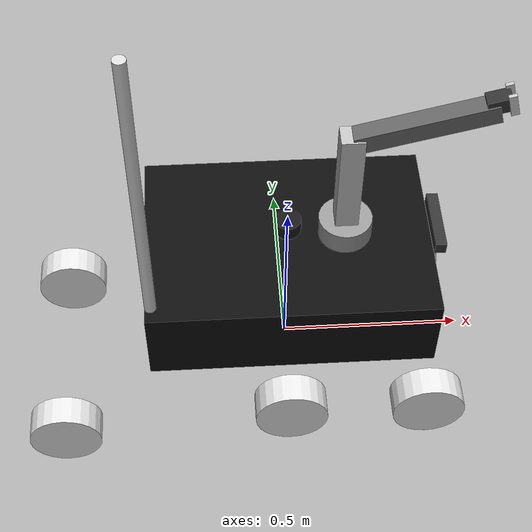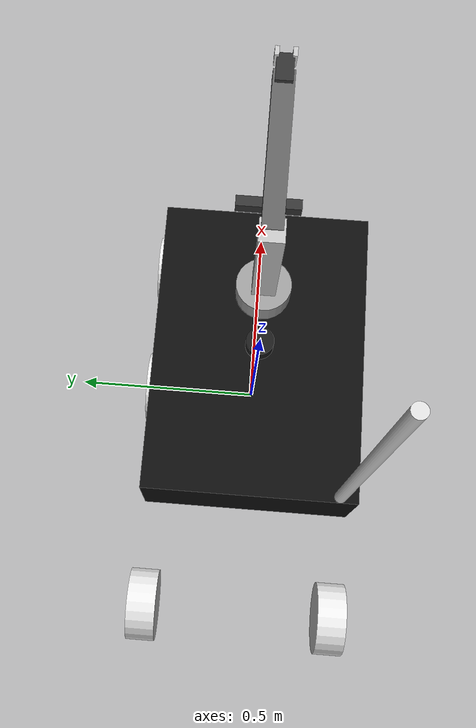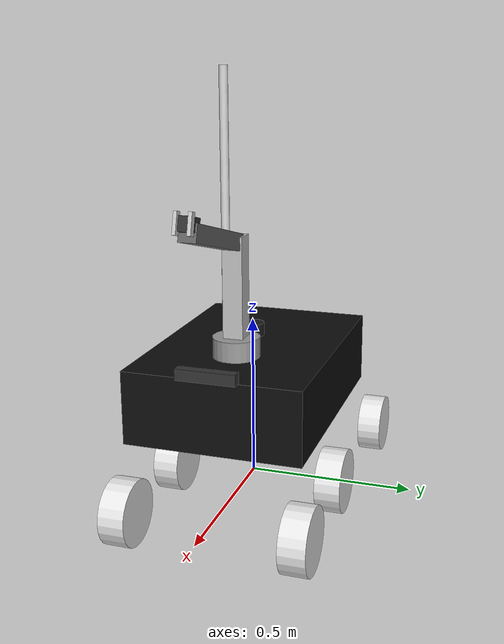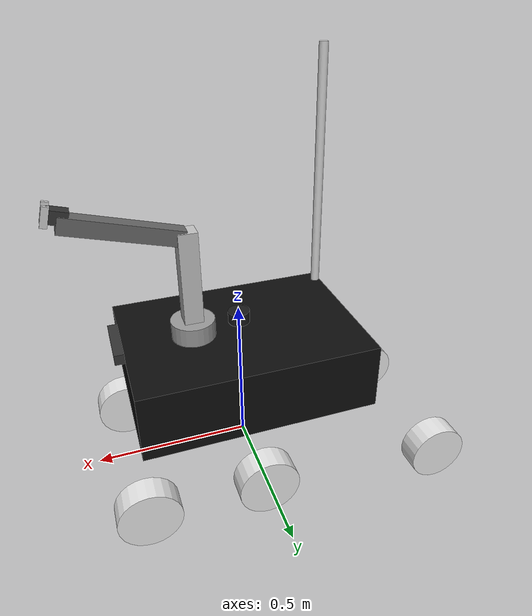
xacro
<?xml version="1.0"?>
<robot name="qbotix_rover" xmlns:xacro="http://ros.org/wiki/xacro">

  <!-- ================= PROPERTIES ================= -->
  <xacro:property name="wheel_radius" value="0.10"/>
  <xacro:property name="wheel_width" value="0.08"/>
  <xacro:property name="base_length" value="0.75"/>
  <xacro:property name="base_width" value="0.53"/>
  <xacro:property name="base_height" value="0.22"/>

  <!-- ================= MATERIALS ================= -->
  <material name="black">
    <color rgba="0.05 0.05 0.05 1.0"/>
  </material>
  <material name="wheel_material">
    <color rgba="0.9 0.9 0.9 1.0"/>
  </material>
  <material name="zed_material">
    <color rgba="0.2 0.2 0.2 1.0"/>
  </material>
  <material name="arm_material">
    <color rgba="0.6 0.6 0.6 1.0"/>
  </material>
  <material name="arm_link_material">
    <color rgba="0.75 0.75 0.75 1.0"/>
  </material>
  <material name="arm_link_dark">
    <color rgba="0.4 0.4 0.4 1.0"/>
  </material>
  <material name="gripper_material">
    <color rgba="0.2 0.2 0.2 1.0"/>
  </material>
  <material name="finger_material">
    <color rgba="0.8 0.8 0.8 1.0"/>
  </material>
  <material name="antenna_material">
    <color rgba="0.85 0.85 0.85 1.0"/>
  </material>
  <material name="lidar_material">
    <color rgba="0.1 0.1 0.1 1.0"/>
  </material>

  <!-- ================= BASE ================= -->
  <link name="base_footprint"/>

  <joint name="base_footprint_joint" type="fixed">
    <parent link="base_footprint"/>
    <child link="base_link"/>
    <origin xyz="0 0 0.32" rpy="0 0 0"/>
  </joint>

  <link name="base_link">
    <visual>
      <geometry>
        <box size="${base_length} ${base_width} ${base_height}"/>
      </geometry>
      <material name="black"/>
    </visual>
    <collision>
      <geometry>
        <box size="${base_length} ${base_width} ${base_height}"/>
      </geometry>
    </collision>
    <inertial>
      <mass value="25.0"/>
      <origin xyz="0 0 0" rpy="0 0 0"/>
      <inertia ixx="0.5" ixy="0" ixz="0" iyy="1.0" iyz="0" izz="1.2"/>
    </inertial>
  </link>

  <!-- ================= RPLIDAR A1 M8 ================= -->
  <!-- LiDAR mounted on top of the robot base -->
  <link name="laser_frame">
    <visual>
      <geometry>
        <cylinder radius="0.035" length="0.04"/>
      </geometry>
      <origin xyz="0 0 0" rpy="0 0 0"/>
      <material name="lidar_material"/>
    </visual>
    <collision>
      <geometry>
        <cylinder radius="0.035" length="0.04"/>
      </geometry>
      <origin xyz="0 0 0" rpy="0 0 0"/>
    </collision>
    <inertial>
      <mass value="0.19"/>
      <origin xyz="0 0 0" rpy="0 0 0"/>
      <inertia ixx="0.0001" ixy="0" ixz="0" iyy="0.0001" iyz="0" izz="0.0001"/>
    </inertial>
  </link>

  <joint name="laser_joint" type="fixed">
    <parent link="base_link"/>
    <child link="laser_frame"/>
    <!-- LiDAR mounted on top center of the robot -->
    <!-- Z = base_height/2 + lidar_height/2 + mount_offset = 0.11 + 0.02 + 0.02 = 0.15 -->
    <origin xyz="0.0 0.0 0.15" rpy="0 0 0"/>
  </joint>

  <!-- ================= ROCKER LINKS ================= -->
  <link name="rocker_left">
    <inertial>
      <mass value="0.1"/>
      <inertia ixx="0.001" ixy="0" ixz="0" iyy="0.001" iyz="0" izz="0.001"/>
    </inertial>
  </link>
  <link name="rocker_right">
    <inertial>
      <mass value="0.1"/>
      <inertia ixx="0.001" ixy="0" ixz="0" iyy="0.001" iyz="0" izz="0.001"/>
    </inertial>
  </link>

  <joint name="rocker_left_joint" type="fixed">
    <parent link="base_link"/>
    <child link="rocker_left"/>
    <origin xyz="0 0.265 -0.12"/>
  </joint>

  <joint name="rocker_right_joint" type="fixed">
    <parent link="base_link"/>
    <child link="rocker_right"/>
    <origin xyz="0 -0.265 -0.12"/>
  </joint>

  <!-- ================= BOGIE LINKS ================= -->
  <link name="bogie_left">
    <inertial>
      <mass value="0.1"/>
      <inertia ixx="0.001" ixy="0" ixz="0" iyy="0.001" iyz="0" izz="0.001"/>
    </inertial>
  </link>
  <link name="bogie_right">
    <inertial>
      <mass value="0.1"/>
      <inertia ixx="0.001" ixy="0" ixz="0" iyy="0.001" iyz="0" izz="0.001"/>
    </inertial>
  </link>

  <joint name="bogie_left_joint" type="fixed">
    <parent link="rocker_left"/>
    <child link="bogie_left"/>
    <origin xyz="-0.28 0 -0.06"/>
  </joint>

  <joint name="bogie_right_joint" type="fixed">
    <parent link="rocker_right"/>
    <child link="bogie_right"/>
    <origin xyz="-0.28 0 -0.06"/>
  </joint>

  <!-- ================= WHEEL MACRO ================= -->
  <xacro:macro name="wheel" params="name parent x">
    <link name="${name}">
      <visual>
        <geometry>
          <cylinder radius="${wheel_radius}" length="${wheel_width}"/>
        </geometry>
        <material name="wheel_material"/>
      </visual>
      <collision>
        <geometry>
          <cylinder radius="${wheel_radius}" length="${wheel_width}"/>
        </geometry>
      </collision>
      <inertial>
        <mass value="2.0"/>
        <inertia ixx="0.01" ixy="0" ixz="0" iyy="0.01" iyz="0" izz="0.02"/>
      </inertial>
    </link>

    <joint name="${name}_joint" type="fixed">
      <parent link="${parent}"/>
      <child link="${name}"/>
      <origin xyz="${x} 0 -0.20" rpy="1.5708 0 0"/>
      <axis xyz="0 0 1"/>
    </joint>
  </xacro:macro>

  <!-- ================= WHEELS ================= -->
  <xacro:wheel name="front_left_wheel"  parent="rocker_left"  x="0.38"/>
  <xacro:wheel name="mid_left_wheel"    parent="rocker_left"  x="0.00"/>
  <xacro:wheel name="rear_left_wheel"   parent="bogie_left"   x="-0.35"/>

  <xacro:wheel name="front_right_wheel" parent="rocker_right" x="0.38"/>
  <xacro:wheel name="mid_right_wheel"   parent="rocker_right" x="0.00"/>
  <xacro:wheel name="rear_right_wheel"  parent="bogie_right"  x="-0.35"/>

  <!-- ================= ZED 2i CAMERA ================= -->
  <link name="zed_camera_link">
    <visual>
      <geometry>
        <box size="0.03 0.175 0.033"/>
      </geometry>
      <material name="zed_material"/>
    </visual>
    <collision>
      <geometry>
        <box size="0.03 0.175 0.033"/>
      </geometry>
    </collision>
    <inertial>
      <mass value="0.2"/>
      <inertia ixx="0.0001" ixy="0" ixz="0" iyy="0.0001" iyz="0" izz="0.0001"/>
    </inertial>
  </link>

  <joint name="zed_camera_joint" type="fixed">
    <parent link="base_link"/>
    <child link="zed_camera_link"/>
    <origin xyz="0.39 0.0 0.13" rpy="0 0 0"/>
  </joint>

  <link name="zed_camera_center"/>
  <joint name="zed_camera_center_joint" type="fixed">
    <parent link="zed_camera_link"/>
    <child link="zed_camera_center"/>
    <origin xyz="0 0 0" rpy="0 0 0"/>
  </joint>

  <link name="zed_left_camera_frame"/>
  <joint name="zed_left_camera_joint" type="fixed">
    <parent link="zed_camera_center"/>
    <child link="zed_left_camera_frame"/>
    <origin xyz="0 0.06 0" rpy="0 0 0"/>
  </joint>

  <link name="zed_left_camera_optical_frame"/>
  <joint name="zed_left_camera_optical_joint" type="fixed">
    <parent link="zed_left_camera_frame"/>
    <child link="zed_left_camera_optical_frame"/>
    <origin xyz="0 0 0" rpy="-1.5708 0 -1.5708"/>
  </joint>

  <link name="zed_right_camera_frame"/>
  <joint name="zed_right_camera_joint" type="fixed">
    <parent link="zed_camera_center"/>
    <child link="zed_right_camera_frame"/>
    <origin xyz="0 -0.06 0" rpy="0 0 0"/>
  </joint>

  <link name="zed_right_camera_optical_frame"/>
  <joint name="zed_right_camera_optical_joint" type="fixed">
    <parent link="zed_right_camera_frame"/>
    <child link="zed_right_camera_optical_frame"/>
    <origin xyz="0 0 0" rpy="-1.5708 0 -1.5708"/>
  </joint>

  <link name="zed_imu_link"/>
  <joint name="zed_imu_joint" type="fixed">
    <parent link="zed_camera_center"/>
    <child link="zed_imu_link"/>
    <origin xyz="0 0 0" rpy="0 0 0"/>
  </joint>

  <!-- ================= ROBOTIC ARM ================= -->
  <link name="arm_base">
    <visual>
      <geometry>
        <cylinder radius="0.07" length="0.06"/>
      </geometry>
      <material name="arm_material"/>
    </visual>
    <collision>
      <geometry>
        <cylinder radius="0.07" length="0.06"/>
      </geometry>
    </collision>
    <inertial>
      <mass value="0.5"/>
      <inertia ixx="0.001" ixy="0" ixz="0" iyy="0.001" iyz="0" izz="0.001"/>
    </inertial>
  </link>

  <joint name="arm_base_joint" type="fixed">
    <parent link="base_link"/>
    <child link="arm_base"/>
    <origin xyz="0.15 0.0 0.14"/>
  </joint>

  <link name="arm_link_1">
    <visual>
      <origin xyz="0 0 0.15"/>
      <geometry>
        <box size="0.06 0.06 0.30"/>
      </geometry>
      <material name="arm_link_material"/>
    </visual>
    <collision>
      <origin xyz="0 0 0.15"/>
      <geometry>
        <box size="0.06 0.06 0.30"/>
      </geometry>
    </collision>
    <inertial>
      <mass value="0.3"/>
      <origin xyz="0 0 0.15"/>
      <inertia ixx="0.003" ixy="0" ixz="0" iyy="0.003" iyz="0" izz="0.001"/>
    </inertial>
  </link>

  <joint name="arm_joint_1" type="fixed">
    <parent link="arm_base"/>
    <child link="arm_link_1"/>
    <origin xyz="0 0 0.03"/>
  </joint>

  <link name="arm_link_2">
    <visual>
      <origin xyz="0.175 0 -0.02"/>
      <geometry>
        <box size="0.35 0.05 0.05"/>
      </geometry>
      <material name="arm_link_dark"/>
    </visual>
    <collision>
      <origin xyz="0.175 0 -0.02"/>
      <geometry>
        <box size="0.35 0.05 0.05"/>
      </geometry>
    </collision>
    <inertial>
      <mass value="0.25"/>
      <origin xyz="0.175 0 -0.02"/>
      <inertia ixx="0.001" ixy="0" ixz="0" iyy="0.003" iyz="0" izz="0.003"/>
    </inertial>
  </link>

  <joint name="arm_joint_2" type="fixed">
    <parent link="arm_link_1"/>
    <child link="arm_link_2"/>
    <origin xyz="0 0 0.30" rpy="0 -0.26 0"/>
  </joint>

  <!-- ================= GRIPPER ================= -->
  <link name="gripper_base">
    <visual>
      <geometry>
        <box size="0.06 0.04 0.04"/>
      </geometry>
      <material name="gripper_material"/>
    </visual>
    <collision>
      <geometry>
        <box size="0.06 0.04 0.04"/>
      </geometry>
    </collision>
    <inertial>
      <mass value="0.1"/>
      <inertia ixx="0.0001" ixy="0" ixz="0" iyy="0.0001" iyz="0" izz="0.0001"/>
    </inertial>
  </link>

  <joint name="gripper_joint" type="fixed">
    <parent link="arm_link_2"/>
    <child link="gripper_base"/>
    <origin xyz="0.35 0 0"/>
  </joint>

  <link name="left_finger">
    <visual>
      <geometry>
        <box size="0.02 0.01 0.06"/>
      </geometry>
      <material name="finger_material"/>
    </visual>
    <collision>
      <geometry>
        <box size="0.02 0.01 0.06"/>
      </geometry>
    </collision>
    <inertial>
      <mass value="0.05"/>
      <inertia ixx="0.00001" ixy="0" ixz="0" iyy="0.00001" iyz="0" izz="0.00001"/>
    </inertial>
  </link>

  <joint name="left_finger_joint" type="fixed">
    <parent link="gripper_base"/>
    <child link="left_finger"/>
    <origin xyz="0.03 0.02 0"/>
  </joint>

  <link name="right_finger">
    <visual>
      <geometry>
        <box size="0.02 0.01 0.06"/>
      </geometry>
      <material name="finger_material"/>
    </visual>
    <collision>
      <geometry>
        <box size="0.02 0.01 0.06"/>
      </geometry>
    </collision>
    <inertial>
      <mass value="0.05"/>
      <inertia ixx="0.00001" ixy="0" ixz="0" iyy="0.00001" iyz="0" izz="0.00001"/>
    </inertial>
  </link>

  <joint name="right_finger_joint" type="fixed">
    <parent link="gripper_base"/>
    <child link="right_finger"/>
    <origin xyz="0.03 -0.02 0"/>
  </joint>

  <!-- ================= ANTENNA ================= -->
  <link name="antenna_link">
    <visual>
      <geometry>
        <cylinder radius="0.015" length="0.9"/>
      </geometry>
      <material name="antenna_material"/>
    </visual>
    <collision>
      <geometry>
        <cylinder radius="0.015" length="0.9"/>
      </geometry>
    </collision>
    <inertial>
      <mass value="0.1"/>
      <inertia ixx="0.007" ixy="0" ixz="0" iyy="0.007" iyz="0" izz="0.00001"/>
    </inertial>
  </link>

  <joint name="antenna_joint" type="fixed">
    <parent link="base_link"/>
    <child link="antenna_link"/>
    <origin xyz="-0.36 -0.22 0.48"/>
  </joint>

</robot>
